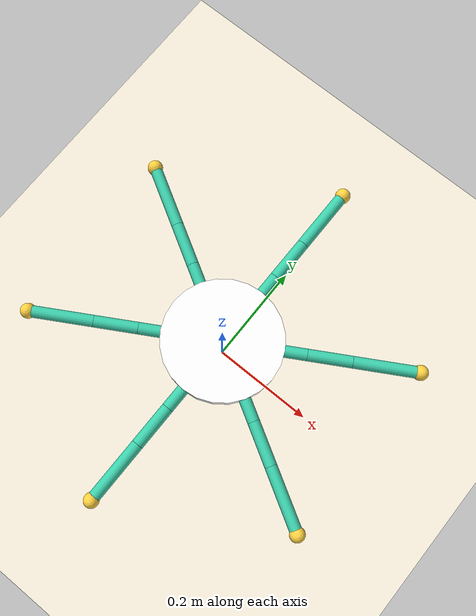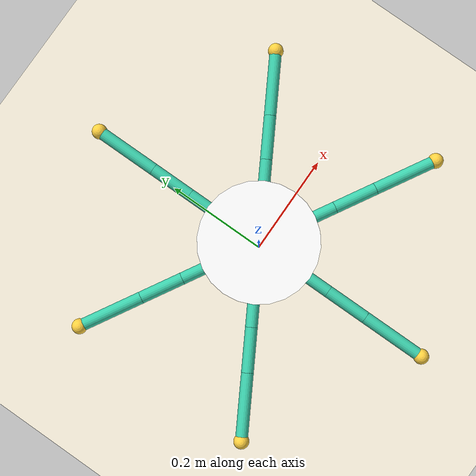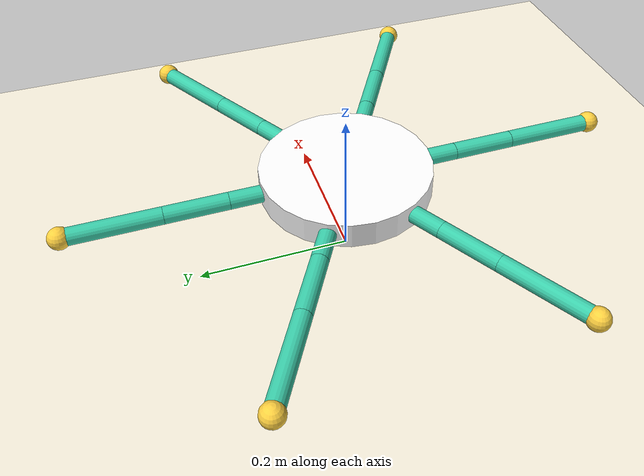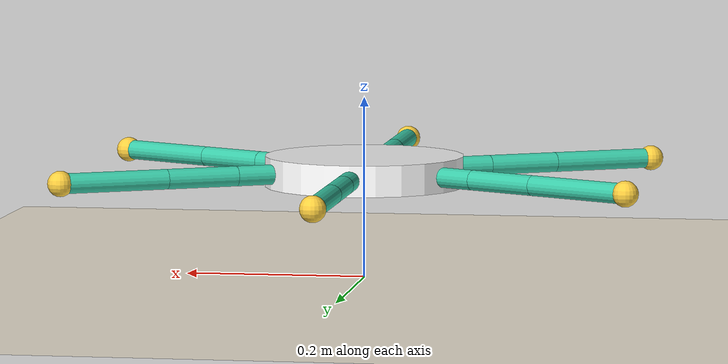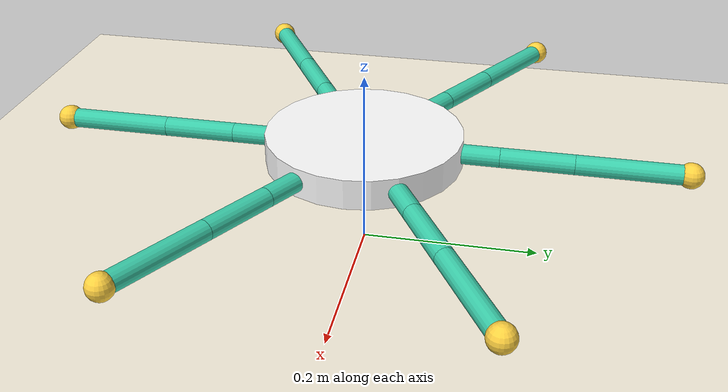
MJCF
<mujoco model="hexapod">
  <compiler angle="degree" autolimits="true"/>
  <option timestep="0.001" integrator="implicitfast"/>
  <visual><headlight diffuse="0.7 0.7 0.7" ambient="0.35 0.35 0.35"/></visual>
  <asset>
    <texture name="grid" type="2d" builtin="checker" rgb1="1 0.97 0.9" rgb2="0.93 0.9 0.82" width="512" height="512"/>
    <material name="grid" texture="grid" texrepeat="40 40"/>
    <material name="body" rgba="1 1 1 1"/>
    <material name="leg" rgba="0.23 0.81 0.67 1"/>
    <material name="foot" rgba="1 0.82 0.25 1"/>
  </asset>
  <default>
    <joint damping="0.5" armature="0.002"/>
    <geom contype="0" conaffinity="0"/>
    <default class="link"><geom type="capsule" size="0.011" material="leg"/></default>
    <default class="foot">
      <geom type="sphere" size="0.014" material="foot" mass="0.005"
            contype="1" conaffinity="0" condim="3" friction="1.2 0.02 0.001"/>
    </default>
  </default>
  <worldbody>
    <light pos="0 0 3" dir="0 0 -1" diffuse="0.6 0.6 0.6"/>
    <geom name="floor" type="plane" size="20 20 0.1" material="grid" contype="0" conaffinity="1"/>
    <body name="torso" pos="0 0 0.1190">
      <freejoint name="root"/>
      <geom name="torso" type="cylinder" size="0.1100 0.017" mass="1.2" material="body"
            contype="1" conaffinity="0"/>
      <site name="imu" pos="0 0 0"/>
      <body name="coxa_0" pos="0.08660 -0.05000 0" euler="0 0 -30.0">
        <joint name="j0_coxa" axis="0 0 1" range="-45.0 45.0"/>
        <geom class="link" fromto="0 0 0 0.05 0 0" mass="0.0500"/>
        <body name="femur_0" pos="0.05 0 0">
          <joint name="j0_femur" axis="0 -1 0" range="-90.0 90.0"/>
          <geom class="link" fromto="0 0 0 0.08 0 0" mass="0.0500"/>
          <body name="tibia_0" pos="0.08 0 0">
            <joint name="j0_tibia" axis="0 -1 0" range="-150.0 0.0"/>
            <geom class="link" fromto="0 0 0 0.12 0 0" mass="0.0500"/>
            <geom name="foot_0" class="foot" pos="0.12 0 0"/>
          </body>
        </body>
      </body>
      <body name="coxa_1" pos="0.00000 -0.10000 0" euler="0 0 -90.0">
        <joint name="j1_coxa" axis="0 0 1" range="-45.0 45.0"/>
        <geom class="link" fromto="0 0 0 0.05 0 0" mass="0.0500"/>
        <body name="femur_1" pos="0.05 0 0">
          <joint name="j1_femur" axis="0 -1 0" range="-90.0 90.0"/>
          <geom class="link" fromto="0 0 0 0.08 0 0" mass="0.0500"/>
          <body name="tibia_1" pos="0.08 0 0">
            <joint name="j1_tibia" axis="0 -1 0" range="-150.0 0.0"/>
            <geom class="link" fromto="0 0 0 0.12 0 0" mass="0.0500"/>
            <geom name="foot_1" class="foot" pos="0.12 0 0"/>
          </body>
        </body>
      </body>
      <body name="coxa_2" pos="-0.08660 -0.05000 0" euler="0 0 -150.0">
        <joint name="j2_coxa" axis="0 0 1" range="-45.0 45.0"/>
        <geom class="link" fromto="0 0 0 0.05 0 0" mass="0.0500"/>
        <body name="femur_2" pos="0.05 0 0">
          <joint name="j2_femur" axis="0 -1 0" range="-90.0 90.0"/>
          <geom class="link" fromto="0 0 0 0.08 0 0" mass="0.0500"/>
          <body name="tibia_2" pos="0.08 0 0">
            <joint name="j2_tibia" axis="0 -1 0" range="-150.0 0.0"/>
            <geom class="link" fromto="0 0 0 0.12 0 0" mass="0.0500"/>
            <geom name="foot_2" class="foot" pos="0.12 0 0"/>
          </body>
        </body>
      </body>
      <body name="coxa_3" pos="-0.08660 0.05000 0" euler="0 0 150.0">
        <joint name="j3_coxa" axis="0 0 1" range="-45.0 45.0"/>
        <geom class="link" fromto="0 0 0 0.05 0 0" mass="0.0500"/>
        <body name="femur_3" pos="0.05 0 0">
          <joint name="j3_femur" axis="0 -1 0" range="-90.0 90.0"/>
          <geom class="link" fromto="0 0 0 0.08 0 0" mass="0.0500"/>
          <body name="tibia_3" pos="0.08 0 0">
            <joint name="j3_tibia" axis="0 -1 0" range="-150.0 0.0"/>
            <geom class="link" fromto="0 0 0 0.12 0 0" mass="0.0500"/>
            <geom name="foot_3" class="foot" pos="0.12 0 0"/>
          </body>
        </body>
      </body>
      <body name="coxa_4" pos="0.00000 0.10000 0" euler="0 0 90.0">
        <joint name="j4_coxa" axis="0 0 1" range="-45.0 45.0"/>
        <geom class="link" fromto="0 0 0 0.05 0 0" mass="0.0500"/>
        <body name="femur_4" pos="0.05 0 0">
          <joint name="j4_femur" axis="0 -1 0" range="-90.0 90.0"/>
          <geom class="link" fromto="0 0 0 0.08 0 0" mass="0.0500"/>
          <body name="tibia_4" pos="0.08 0 0">
            <joint name="j4_tibia" axis="0 -1 0" range="-150.0 0.0"/>
            <geom class="link" fromto="0 0 0 0.12 0 0" mass="0.0500"/>
            <geom name="foot_4" class="foot" pos="0.12 0 0"/>
          </body>
        </body>
      </body>
      <body name="coxa_5" pos="0.08660 0.05000 0" euler="0 0 30.0">
        <joint name="j5_coxa" axis="0 0 1" range="-45.0 45.0"/>
        <geom class="link" fromto="0 0 0 0.05 0 0" mass="0.0500"/>
        <body name="femur_5" pos="0.05 0 0">
          <joint name="j5_femur" axis="0 -1 0" range="-90.0 90.0"/>
          <geom class="link" fromto="0 0 0 0.08 0 0" mass="0.0500"/>
          <body name="tibia_5" pos="0.08 0 0">
            <joint name="j5_tibia" axis="0 -1 0" range="-150.0 0.0"/>
            <geom class="link" fromto="0 0 0 0.12 0 0" mass="0.0500"/>
            <geom name="foot_5" class="foot" pos="0.12 0 0"/>
          </body>
        </body>
      </body>
    </body>
  </worldbody>
  <actuator>
    <position name="a0_coxa" joint="j0_coxa" kp="20.0" ctrlrange="-0.78540 0.78540" forcerange="-1.5 1.5"/>
    <position name="a0_femur" joint="j0_femur" kp="20.0" ctrlrange="-1.57080 1.57080" forcerange="-1.5 1.5"/>
    <position name="a0_tibia" joint="j0_tibia" kp="20.0" ctrlrange="-2.61799 0.00000" forcerange="-1.5 1.5"/>
    <position name="a1_coxa" joint="j1_coxa" kp="20.0" ctrlrange="-0.78540 0.78540" forcerange="-1.5 1.5"/>
    <position name="a1_femur" joint="j1_femur" kp="20.0" ctrlrange="-1.57080 1.57080" forcerange="-1.5 1.5"/>
    <position name="a1_tibia" joint="j1_tibia" kp="20.0" ctrlrange="-2.61799 0.00000" forcerange="-1.5 1.5"/>
    <position name="a2_coxa" joint="j2_coxa" kp="20.0" ctrlrange="-0.78540 0.78540" forcerange="-1.5 1.5"/>
    <position name="a2_femur" joint="j2_femur" kp="20.0" ctrlrange="-1.57080 1.57080" forcerange="-1.5 1.5"/>
    <position name="a2_tibia" joint="j2_tibia" kp="20.0" ctrlrange="-2.61799 0.00000" forcerange="-1.5 1.5"/>
    <position name="a3_coxa" joint="j3_coxa" kp="20.0" ctrlrange="-0.78540 0.78540" forcerange="-1.5 1.5"/>
    <position name="a3_femur" joint="j3_femur" kp="20.0" ctrlrange="-1.57080 1.57080" forcerange="-1.5 1.5"/>
    <position name="a3_tibia" joint="j3_tibia" kp="20.0" ctrlrange="-2.61799 0.00000" forcerange="-1.5 1.5"/>
    <position name="a4_coxa" joint="j4_coxa" kp="20.0" ctrlrange="-0.78540 0.78540" forcerange="-1.5 1.5"/>
    <position name="a4_femur" joint="j4_femur" kp="20.0" ctrlrange="-1.57080 1.57080" forcerange="-1.5 1.5"/>
    <position name="a4_tibia" joint="j4_tibia" kp="20.0" ctrlrange="-2.61799 0.00000" forcerange="-1.5 1.5"/>
    <position name="a5_coxa" joint="j5_coxa" kp="20.0" ctrlrange="-0.78540 0.78540" forcerange="-1.5 1.5"/>
    <position name="a5_femur" joint="j5_femur" kp="20.0" ctrlrange="-1.57080 1.57080" forcerange="-1.5 1.5"/>
    <position name="a5_tibia" joint="j5_tibia" kp="20.0" ctrlrange="-2.61799 0.00000" forcerange="-1.5 1.5"/>
  </actuator>
</mujoco>
